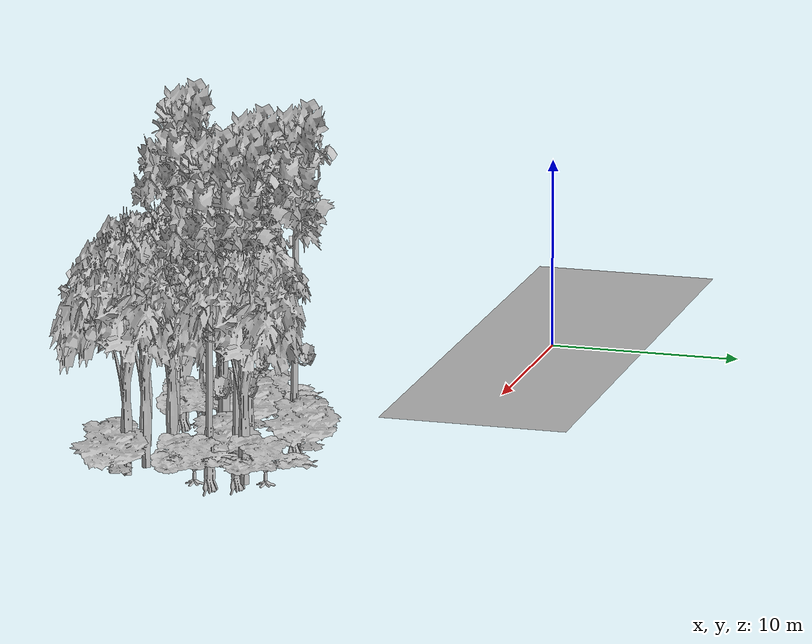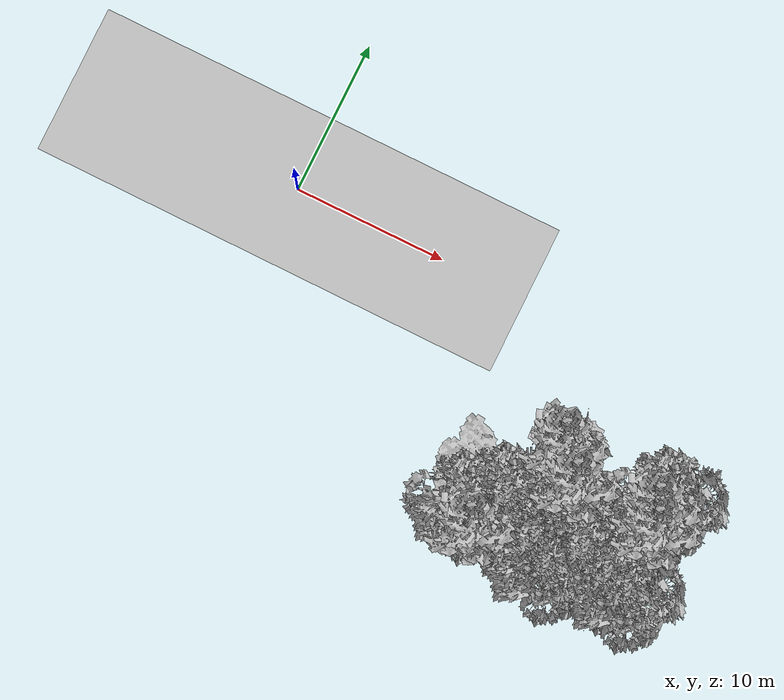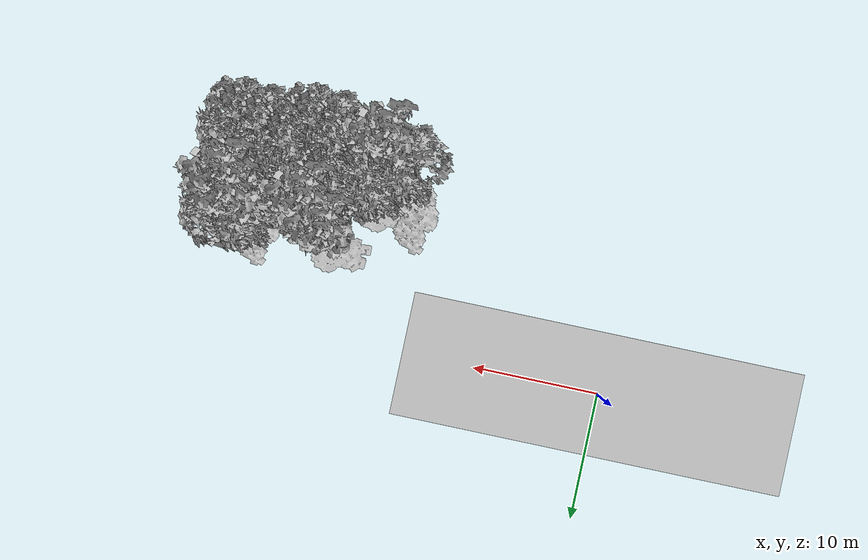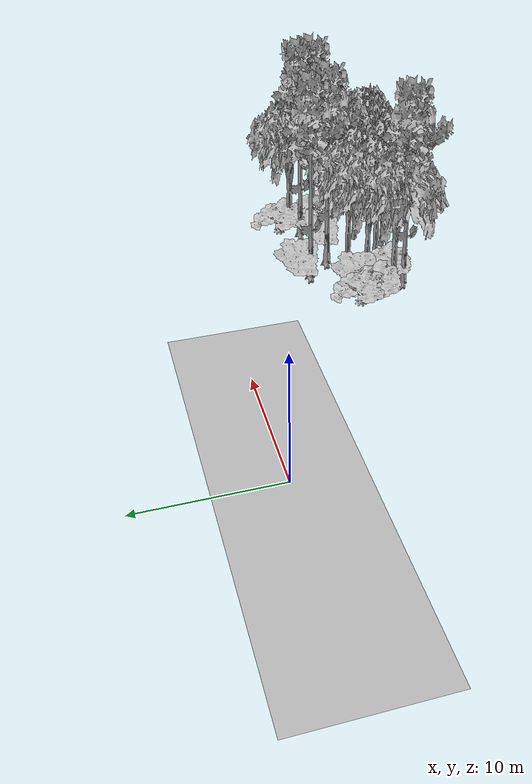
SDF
<sdf version="1.7">
 <world name="default">
  <model name="ground_plane">
   <static>1</static>
   <link name="link">
    <collision name="collision">
     <pose>-50 0 0 0 -0 0</pose>
     <geometry><plane><normal>0 0 1</normal><size>100 100</size></plane></geometry>
     <surface><contact><ode><min_depth>0.01</min_depth><max_vel>0</max_vel></ode></contact></surface>
    </collision>
    <visual name="grass">
     <cast_shadows>0</cast_shadows>
     <geometry>
      <mesh>
       <scale>0.5814285714285714 0.18142857142857144 0.1</scale>
       <uri>file://grass_plane/meshes/grass_plane.dae</uri>
      </mesh>
     </geometry>
    </visual>
   </link>
  </model>
  <model name="Tree 28">
   <static>1</static>
   <pose>22.24427193774015 -10.939156199806654 0 1.57079 -0 0</pose>
   <link name="link">
    <collision name="collision">
     <geometry><mesh><scale>3.5 5 3.5</scale><uri>model://tree_2/meshes/tree_2.obj</uri></mesh></geometry>
    </collision>
    <visual name="visual">
     <geometry><mesh><scale>3.5 5 3.5</scale><uri>model://tree_2/meshes/tree_2.obj</uri></mesh></geometry>
    </visual>
   </link>
  </model>
  <model name="Tree 48">
   <static>1</static>
   <pose>23.802944465809446 -14.470290977720433 0 1.57079 -0 0</pose>
   <link name="link">
    <collision name="collision">
     <geometry><mesh><scale>3.5 5 3.5</scale><uri>model://tree_2/meshes/tree_2.obj</uri></mesh></geometry>
    </collision>
    <visual name="visual">
     <geometry><mesh><scale>3.5 5 3.5</scale><uri>model://tree_2/meshes/tree_2.obj</uri></mesh></geometry>
    </visual>
   </link>
  </model>
  <model name="Tree 91">
   <static>1</static>
   <pose>19.393369285729705 -13.21639810912145 0 1.57079 -0 0</pose>
   <link name="link">
    <collision name="collision">
     <geometry><mesh><scale>4 2.5 4</scale><uri>model://tree_1/meshes/tree_1.obj</uri></mesh></geometry>
    </collision>
    <visual name="visual">
     <geometry><mesh><scale>4 2.5 4</scale><uri>model://tree_1/meshes/tree_1.obj</uri></mesh></geometry>
    </visual>
   </link>
  </model>
  <model name="Tree 97">
   <static>1</static>
   <pose>18.900163015381594 -10.835051260087477 0 1.57079 -0 0</pose>
   <link name="link">
    <collision name="collision">
     <geometry><mesh><scale>3 2 3</scale><uri>model://tree_3/meshes/tree_3.obj</uri></mesh></geometry>
    </collision>
    <visual name="visual">
     <geometry><mesh><scale>3 2 3</scale><uri>model://tree_3/meshes/tree_3.obj</uri></mesh></geometry>
    </visual>
   </link>
  </model>
  <model name="Tree 126">
   <static>1</static>
   <pose>28.743498940046663 -7.831393073409628 0 1.57079 -0 0</pose>
   <link name="link">
    <collision name="collision">
     <geometry><mesh><scale>3.5 5 3.5</scale><uri>model://tree_2/meshes/tree_2.obj</uri></mesh></geometry>
    </collision>
    <visual name="visual">
     <geometry><mesh><scale>3.5 5 3.5</scale><uri>model://tree_2/meshes/tree_2.obj</uri></mesh></geometry>
    </visual>
   </link>
  </model>
  <model name="Tree 163">
   <static>1</static>
   <pose>28.35746932418874 -9.751295565954523 0 1.57079 -0 0</pose>
   <link name="link">
    <collision name="collision">
     <geometry><mesh><scale>3.5 5 3.5</scale><uri>model://tree_9/meshes/tree_9.obj</uri></mesh></geometry>
    </collision>
    <visual name="visual">
     <geometry><mesh><scale>3.5 5 3.5</scale><uri>model://tree_9/meshes/tree_9.obj</uri></mesh></geometry>
    </visual>
   </link>
  </model>
  <model name="Tree 170">
   <static>1</static>
   <pose>17.090302368934005 -11.529522098456258 0 1.57079 -0 0</pose>
   <link name="link">
    <collision name="collision">
     <geometry><mesh><scale>4 2.5 4</scale><uri>model://tree_1/meshes/tree_1.obj</uri></mesh></geometry>
    </collision>
    <visual name="visual">
     <geometry><mesh><scale>4 2.5 4</scale><uri>model://tree_1/meshes/tree_1.obj</uri></mesh></geometry>
    </visual>
   </link>
  </model>
  <model name="Tree 195">
   <static>1</static>
   <pose>20.04686115760248 -11.808801560782337 0 1.57079 -0 0</pose>
   <link name="link">
    <collision name="collision">
     <geometry><mesh><scale>3.5 5 3.5</scale><uri>model://tree_2/meshes/tree_2.obj</uri></mesh></geometry>
    </collision>
    <visual name="visual">
     <geometry><mesh><scale>3.5 5 3.5</scale><uri>model://tree_2/meshes/tree_2.obj</uri></mesh></geometry>
    </visual>
   </link>
  </model>
  <model name="Tree 201">
   <static>1</static>
   <pose>22.971972180286357 -9.38612169889188 0 1.57079 -0 0</pose>
   <link name="link">
    <collision name="collision">
     <geometry><mesh><scale>3.5 5 3.5</scale><uri>model://tree_9/meshes/tree_9.obj</uri></mesh></geometry>
    </collision>
    <visual name="visual">
     <geometry><mesh><scale>3.5 5 3.5</scale><uri>model://tree_9/meshes/tree_9.obj</uri></mesh></geometry>
    </visual>
   </link>
  </model>
  <model name="Tree 238">
   <static>1</static>
   <pose>28.359589949668916 -14.826605147863106 0 1.57079 -0 0</pose>
   <link name="link">
    <collision name="collision">
     <geometry><mesh><scale>3 2 3</scale><uri>model://tree_3/meshes/tree_3.obj</uri></mesh></geometry>
    </collision>
    <visual name="visual">
     <geometry><mesh><scale>3 2 3</scale><uri>model://tree_3/meshes/tree_3.obj</uri></mesh></geometry>
    </visual>
   </link>
  </model>
  <model name="Tree 358">
   <static>1</static>
   <pose>29.177601015625797 -10.257986077934572 0 1.57079 -0 0</pose>
   <link name="link">
    <collision name="collision">
     <geometry><mesh><scale>4 2.5 4</scale><uri>model://tree_1/meshes/tree_1.obj</uri></mesh></geometry>
    </collision>
    <visual name="visual">
     <geometry><mesh><scale>4 2.5 4</scale><uri>model://tree_1/meshes/tree_1.obj</uri></mesh></geometry>
    </visual>
   </link>
  </model>
  <model name="Tree 392">
   <static>1</static>
   <pose>25.446373636848506 -12.603686096152968 0 1.57079 -0 0</pose>
   <link name="link">
    <collision name="collision">
     <geometry><mesh><scale>3.5 5 3.5</scale><uri>model://tree_2/meshes/tree_2.obj</uri></mesh></geometry>
    </collision>
    <visual name="visual">
     <geometry><mesh><scale>3.5 5 3.5</scale><uri>model://tree_2/meshes/tree_2.obj</uri></mesh></geometry>
    </visual>
   </link>
  </model>
  <model name="Tree 393">
   <static>1</static>
   <pose>21.37079097637755 -7.574140410792232 0 1.57079 -0 0</pose>
   <link name="link">
    <collision name="collision">
     <geometry><mesh><scale>3.5 5 3.5</scale><uri>model://tree_9/meshes/tree_9.obj</uri></mesh></geometry>
    </collision>
    <visual name="visual">
     <geometry><mesh><scale>3.5 5 3.5</scale><uri>model://tree_9/meshes/tree_9.obj</uri></mesh></geometry>
    </visual>
   </link>
  </model>
  <model name="Tree 420">
   <static>1</static>
   <pose>27.29671272508716 -13.361219265861171 0 1.57079 -0 0</pose>
   <link name="link">
    <collision name="collision">
     <geometry><mesh><scale>3.5 5 3.5</scale><uri>model://tree_2/meshes/tree_2.obj</uri></mesh></geometry>
    </collision>
    <visual name="visual">
     <geometry><mesh><scale>3.5 5 3.5</scale><uri>model://tree_2/meshes/tree_2.obj</uri></mesh></geometry>
    </visual>
   </link>
  </model>
  <model name="Tree 430">
   <static>1</static>
   <pose>27.803114917189248 -8.532127943650794 0 1.57079 -0 0</pose>
   <link name="link">
    <collision name="collision">
     <geometry><mesh><scale>3.5 5 3.5</scale><uri>model://tree_9/meshes/tree_9.obj</uri></mesh></geometry>
    </collision>
    <visual name="visual">
     <geometry><mesh><scale>3.5 5 3.5</scale><uri>model://tree_9/meshes/tree_9.obj</uri></mesh></geometry>
    </visual>
   </link>
  </model>
  <model name="Tree 439">
   <static>1</static>
   <pose>16.650704745244653 -10.211896875026794 0 1.57079 -0 0</pose>
   <link name="link">
    <collision name="collision">
     <geometry><mesh><scale>4 2.5 4</scale><uri>model://tree_1/meshes/tree_1.obj</uri></mesh></geometry>
    </collision>
    <visual name="visual">
     <geometry><mesh><scale>4 2.5 4</scale><uri>model://tree_1/meshes/tree_1.obj</uri></mesh></geometry>
    </visual>
   </link>
  </model>
  <model name="Tree 442">
   <static>1</static>
   <pose>18.058585335004565 -13.292155473409732 0 1.57079 -0 0</pose>
   <link name="link">
    <collision name="collision">
     <geometry><mesh><scale>3.5 5 3.5</scale><uri>model://tree_2/meshes/tree_2.obj</uri></mesh></geometry>
    </collision>
    <visual name="visual">
     <geometry><mesh><scale>3.5 5 3.5</scale><uri>model://tree_2/meshes/tree_2.obj</uri></mesh></geometry>
    </visual>
   </link>
  </model>
  <model name="Tree 451">
   <static>1</static>
   <pose>22.56620466142182 -13.431895890674516 0 1.57079 -0 0</pose>
   <link name="link">
    <collision name="collision">
     <geometry><mesh><scale>3.5 5 3.5</scale><uri>model://tree_2/meshes/tree_2.obj</uri></mesh></geometry>
    </collision>
    <visual name="visual">
     <geometry><mesh><scale>3.5 5 3.5</scale><uri>model://tree_2/meshes/tree_2.obj</uri></mesh></geometry>
    </visual>
   </link>
  </model>
  <model name="Tree 463">
   <static>1</static>
   <pose>28.4627666155954 -6.85116162650648 0 1.57079 -0 0</pose>
   <link name="link">
    <collision name="collision">
     <geometry><mesh><scale>4 2.5 4</scale><uri>model://tree_1/meshes/tree_1.obj</uri></mesh></geometry>
    </collision>
    <visual name="visual">
     <geometry><mesh><scale>4 2.5 4</scale><uri>model://tree_1/meshes/tree_1.obj</uri></mesh></geometry>
    </visual>
   </link>
  </model>
  <model name="Tree 510">
   <static>1</static>
   <pose>28.80137542785465 -13.832604768824755 0 1.57079 -0 0</pose>
   <link name="link">
    <collision name="collision">
     <geometry><mesh><scale>3.5 5 3.5</scale><uri>model://tree_2/meshes/tree_2.obj</uri></mesh></geometry>
    </collision>
    <visual name="visual">
     <geometry><mesh><scale>3.5 5 3.5</scale><uri>model://tree_2/meshes/tree_2.obj</uri></mesh></geometry>
    </visual>
   </link>
  </model>
  <model name="Tree 517">
   <static>1</static>
   <pose>25.897363159310004 -9.936712459631423 0 1.57079 -0 0</pose>
   <link name="link">
    <collision name="collision">
     <geometry><mesh><scale>3 2 3</scale><uri>model://tree_3/meshes/tree_3.obj</uri></mesh></geometry>
    </collision>
    <visual name="visual">
     <geometry><mesh><scale>3 2 3</scale><uri>model://tree_3/meshes/tree_3.obj</uri></mesh></geometry>
    </visual>
   </link>
  </model>
  <model name="Tree 523">
   <static>1</static>
   <pose>18.574347958025243 -14.325926956459218 0 1.57079 -0 0</pose>
   <link name="link">
    <collision name="collision">
     <geometry><mesh><scale>3.5 5 3.5</scale><uri>model://tree_9/meshes/tree_9.obj</uri></mesh></geometry>
    </collision>
    <visual name="visual">
     <geometry><mesh><scale>3.5 5 3.5</scale><uri>model://tree_9/meshes/tree_9.obj</uri></mesh></geometry>
    </visual>
   </link>
  </model>
  <model name="Tree 527">
   <static>1</static>
   <pose>21.95929146133065 -7.00985462137759 0 1.57079 -0 0</pose>
   <link name="link">
    <collision name="collision">
     <geometry><mesh><scale>3 2 3</scale><uri>model://tree_3/meshes/tree_3.obj</uri></mesh></geometry>
    </collision>
    <visual name="visual">
     <geometry><mesh><scale>3 2 3</scale><uri>model://tree_3/meshes/tree_3.obj</uri></mesh></geometry>
    </visual>
   </link>
  </model>
 </world>
</sdf>
